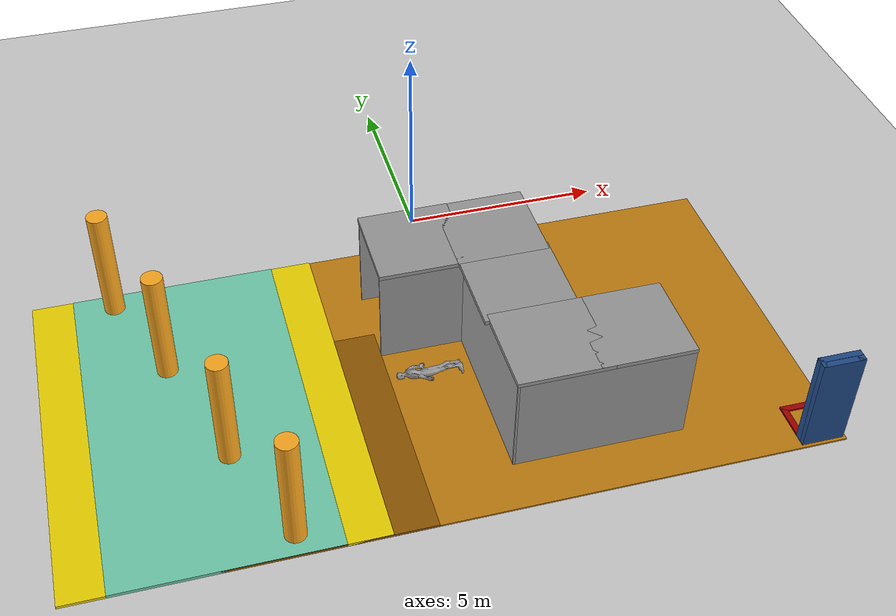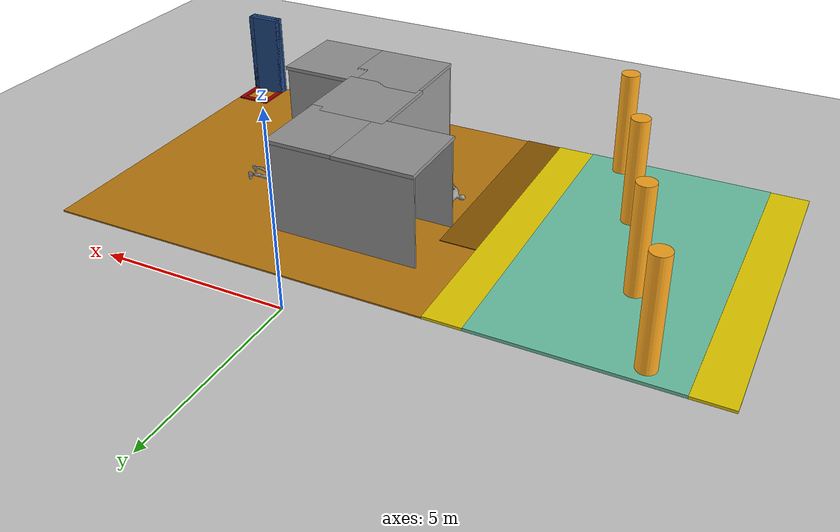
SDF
<sdf version="1.6">
 <world name="default">
  <light name="sun" type="directional">
   <pose>0 0 10 0 -0 0</pose>
   <diffuse>0.8 0.8 0.8 1</diffuse>
   <specular>0.2 0.2 0.2 1</specular>
   <attenuation>
    <range>1000</range>
    <constant>0.9</constant>
    <linear>0.01</linear>
    <quadratic>0.001</quadratic>
   </attenuation>
   <direction>-0.5 0.1 -0.9</direction>
  </light>
  <model name="ground_plane">
   <static>1</static>
   <link name="link">
    <collision name="collision">
     <geometry><plane><normal>0 0 1</normal><size>100 100</size></plane></geometry>
     <surface>
      <contact><collide_bitmask>65535</collide_bitmask></contact>
      <friction><ode><mu>100</mu><mu2>50</mu2></ode></friction>
     </surface>
    </collision>
    <visual name="visual">
     <cast_shadows>0</cast_shadows>
     <geometry><plane><normal>0 0 1</normal><size>100 100</size></plane></geometry>
     <material>
      <script><uri>file://media/materials/scripts/gazebo.material</uri><name>Gazebo/Grey</name></script>
     </material>
    </visual>
   </link>
  </model>
  <gravity>0 0 -9.8</gravity>
  <magnetic_field>6e-06 2.3e-05 -4.2e-05</magnetic_field>
  <atmosphere type="adiabatic"/>
  <physics name="default_physics" default="0" type="ode">
   <max_step_size>0.001</max_step_size>
   <real_time_factor>1</real_time_factor>
   <real_time_update_rate>1000</real_time_update_rate>
  </physics>
  <scene><ambient>0.4 0.4 0.4 1</ambient><background>0.7 0.7 0.7 1</background><shadows>1</shadows></scene>
  <audio><device>default</device></audio>
  <spherical_coordinates>
   <surface_model>EARTH_WGS84</surface_model>
   <latitude_deg>0</latitude_deg>
   <longitude_deg>0</longitude_deg>
   <elevation>0</elevation>
   <heading_deg>0</heading_deg>
  </spherical_coordinates>
  <model name="base_m4">
   <pose>-1.24763 -5.54199 0 0 -0 0</pose>
   <link name="Wall_11">
    <collision name="Wall_11_Collision">
     <geometry><box><size>6 6 0.06</size></box></geometry>
     <pose>0 0 0.03 0 -0 0</pose>
    </collision>
    <visual name="Wall_11_Visual">
     <pose>0 0 0.03 0 -0 0</pose>
     <geometry><box><size>6 6 0.06</size></box></geometry>
     <material>
      <script><uri>file://media/materials/scripts/gazebo.material</uri><name>Gazebo/Grey</name></script>
      <ambient>0.560784 0.34902 0.00784314 1</ambient>
     </material>
     <meta><layer>0</layer></meta>
    </visual>
    <pose>-3.75 -1.5 0 0 -0 0</pose>
   </link>
   <link name="Wall_3">
    <collision name="Wall_3_Collision">
     <geometry><box><size>9 1 0.07</size></box></geometry>
     <pose>0 0 0.035 0 -0 0</pose>
    </collision>
    <visual name="Wall_3_Visual">
     <pose>0 0 0.035 0 -0 0</pose>
     <geometry><box><size>9 1 0.07</size></box></geometry>
     <material>
      <script><uri>file://media/materials/scripts/gazebo.material</uri><name>Gazebo/Grey</name></script>
      <ambient>0.929412 0.831373 0 1</ambient>
     </material>
     <meta><layer>0</layer></meta>
    </visual>
    <pose>-8.25 0 0 0 -0 1.5708</pose>
   </link>
   <link name="Wall_5">
    <collision name="Wall_5_Collision">
     <geometry><box><size>9 5 0.08</size></box></geometry>
     <pose>0 0 0.04 0 -0 0</pose>
    </collision>
    <visual name="Wall_5_Visual">
     <pose>0 0 0.04 0 -0 0</pose>
     <geometry><box><size>9 5 0.08</size></box></geometry>
     <material>
      <script><uri>file://media/materials/scripts/gazebo.material</uri><name>Gazebo/Grey</name></script>
      <ambient>0.435294 0.796078 0.67451 1</ambient>
     </material>
     <meta><layer>0</layer></meta>
    </visual>
    <pose>-5.25 0 0 0 -0 1.5708</pose>
   </link>
   <link name="Wall_7">
    <collision name="Wall_7_Collision">
     <geometry><box><size>9 1 0.07</size></box></geometry>
     <pose>0 0 0.035 0 -0 0</pose>
    </collision>
    <visual name="Wall_7_Visual">
     <pose>0 0 0.035 0 -0 0</pose>
     <geometry><box><size>9 1 0.07</size></box></geometry>
     <material>
      <script><uri>file://media/materials/scripts/gazebo.material</uri><name>Gazebo/Grey</name></script>
      <ambient>0.929412 0.831373 0 1</ambient>
     </material>
     <meta><layer>0</layer></meta>
    </visual>
    <pose>-2.25 0 0 0 -0 1.5708</pose>
   </link>
   <link name="Wall_9">
    <collision name="Wall_9_Collision">
     <geometry><box><size>10.5 9 0.04</size></box></geometry>
     <pose>0 0 0.02 0 -0 0</pose>
    </collision>
    <visual name="Wall_9_Visual">
     <pose>0 0 0.02 0 -0 0</pose>
     <geometry><box><size>10.5 9 0.04</size></box></geometry>
     <material>
      <script><uri>file://media/materials/scripts/gazebo.material</uri><name>Gazebo/Grey</name></script>
      <ambient>0.756863 0.490196 0.0666667 1</ambient>
     </material>
     <meta><layer>0</layer></meta>
    </visual>
    <pose>3.5 0 0 0 -0 0</pose>
   </link>
   <static>1</static>
  </model>
  <model name="fanAndHeliport">
   <pose>6.94427 -9.39548 -0 0 -0 3.13599</pose>
   <link name="Wall_12">
    <collision name="Wall_12_Collision">
     <geometry><box><size>1 0.15 0.085</size></box></geometry>
     <pose>0 0 0.0425 0 -0 0</pose>
    </collision>
    <visual name="Wall_12_Visual">
     <pose>0 0 0.0425 0 -0 0</pose>
     <geometry><box><size>1 0.15 0.085</size></box></geometry>
     <material>
      <script><uri>file://media/materials/scripts/gazebo.material</uri><name>Gazebo/Grey</name></script>
      <ambient>0.643137 0 0 1</ambient>
     </material>
     <meta><layer>0</layer></meta>
    </visual>
    <pose>-0.425 -0.07725 0 0 -0 -1.5708</pose>
   </link>
   <link name="Wall_13">
    <collision name="Wall_13_Collision">
     <geometry><box><size>1 0.15 0.085</size></box></geometry>
     <pose>0 0 0.0425 0 -0 0</pose>
    </collision>
    <visual name="Wall_13_Visual">
     <pose>0 0 0.0425 0 -0 0</pose>
     <geometry><box><size>1 0.15 0.085</size></box></geometry>
     <material>
      <script><uri>file://media/materials/scripts/gazebo.material</uri><name>Gazebo/Grey</name></script>
      <ambient>0.643137 0 0 1</ambient>
     </material>
     <meta><layer>0</layer></meta>
    </visual>
    <pose>-0 -0.50225 0 0 -0 0</pose>
   </link>
   <link name="Wall_14">
    <collision name="Wall_14_Collision">
     <geometry><box><size>1 0.15 0.085</size></box></geometry>
     <pose>0 0 0.0425 0 -0 0</pose>
    </collision>
    <visual name="Wall_14_Visual">
     <pose>0 0 0.0425 0 -0 0</pose>
     <geometry><box><size>1 0.15 0.085</size></box></geometry>
     <material>
      <script><uri>file://media/materials/scripts/gazebo.material</uri><name>Gazebo/Grey</name></script>
      <ambient>0.643137 0 0 1</ambient>
     </material>
     <meta><layer>0</layer></meta>
    </visual>
    <pose>0.425 -0.07725 0 0 -0 1.5708</pose>
   </link>
   <link name="Wall_2">
    <collision name="Wall_2_Collision">
     <geometry><box><size>1 0.15 2.5</size></box></geometry>
     <pose>0 0 1.25 0 -0 0</pose>
    </collision>
    <visual name="Wall_2_Visual">
     <pose>0 0 1.25 0 -0 0</pose>
     <geometry><box><size>1 0.15 2.5</size></box></geometry>
     <material>
      <script><uri>file://media/materials/scripts/gazebo.material</uri><name>Gazebo/Grey</name></script>
      <ambient>0.12549 0.290196 0.529412 1</ambient>
     </material>
     <meta><layer>0</layer></meta>
    </visual>
    <pose>-0 0.50225 0 0 -0 3.14159</pose>
   </link>
   <link name="Wall_3">
    <collision name="Wall_3_Collision">
     <geometry><box><size>0.293 0.15 2.5</size></box></geometry>
     <pose>0 0 1.25 0 -0 0</pose>
    </collision>
    <visual name="Wall_3_Visual">
     <pose>0 0 1.25 0 -0 0</pose>
     <geometry><box><size>0.293 0.15 2.5</size></box></geometry>
     <material>
      <script><uri>file://media/materials/scripts/gazebo.material</uri><name>Gazebo/Grey</name></script>
      <ambient>0.12549 0.290196 0.529412 1</ambient>
     </material>
     <meta><layer>0</layer></meta>
    </visual>
    <pose>-0.425 0.41925 0 0 -0 -1.5708</pose>
   </link>
   <link name="Wall_4">
    <collision name="Wall_4_Collision">
     <geometry><box><size>1 0.15 2.5</size></box></geometry>
     <pose>0 0 1.25 0 -0 0</pose>
    </collision>
    <visual name="Wall_4_Visual">
     <pose>0 0 1.25 0 -0 0</pose>
     <geometry><box><size>1 0.15 2.5</size></box></geometry>
     <material>
      <script><uri>file://media/materials/scripts/gazebo.material</uri><name>Gazebo/Grey</name></script>
      <ambient>0.12549 0.290196 0.529412 1</ambient>
     </material>
     <meta><layer>0</layer></meta>
    </visual>
    <pose>-0 0.34775 0 0 -0 0</pose>
   </link>
   <link name="Wall_5">
    <collision name="Wall_5_Collision">
     <geometry><box><size>0.293 0.15 2.5</size></box></geometry>
     <pose>0 0 1.25 0 -0 0</pose>
    </collision>
    <visual name="Wall_5_Visual">
     <pose>0 0 1.25 0 -0 0</pose>
     <geometry><box><size>0.293 0.15 2.5</size></box></geometry>
     <material>
      <script><uri>file://media/materials/scripts/gazebo.material</uri><name>Gazebo/Grey</name></script>
      <ambient>0.12549 0.290196 0.529412 1</ambient>
     </material>
     <meta><layer>0</layer></meta>
    </visual>
    <pose>0.425 0.41925 0 0 -0 1.5708</pose>
   </link>
   <static>1</static>
  </model>
  <model name="m2_1">
   <pose>1.02363 -5.7654 0 0 -0 0</pose>
   <link name="Wall_100">
    <collision name="Wall_100_Collision">
     <geometry><box><size>4.1 0.05 2.5</size></box></geometry>
     <pose>0 0 1.25 0 -0 0</pose>
    </collision>
    <visual name="Wall_100_Visual">
     <pose>0 0 1.25 0 -0 0</pose>
     <geometry><box><size>4.1 0.05 2.5</size></box></geometry>
     <material>
      <script><uri>file://media/materials/scripts/gazebo.material</uri><name>Gazebo/Grey</name></script>
      <ambient>1 1 1 1</ambient>
     </material>
     <meta><layer>0</layer></meta>
    </visual>
    <pose>-1 -1.025 0 0 -0 1.5708</pose>
   </link>
   <link name="Wall_102">
    <collision name="Wall_102_Collision">
     <geometry><box><size>2.05 0.05 2.5</size></box></geometry>
     <pose>0 0 1.25 0 -0 0</pose>
    </collision>
    <visual name="Wall_102_Visual">
     <pose>0 0 1.25 0 -0 0</pose>
     <geometry><box><size>2.05 0.05 2.5</size></box></geometry>
     <material>
      <script><uri>file://media/materials/scripts/gazebo.material</uri><name>Gazebo/Grey</name></script>
      <ambient>1 1 1 1</ambient>
     </material>
     <meta><layer>0</layer></meta>
    </visual>
    <pose>-2 1 0 0 -0 3.14159</pose>
   </link>
   <link name="Wall_81">
    <collision name="Wall_81_Collision">
     <geometry><box><size>4.05 0.05 2.5</size></box></geometry>
     <pose>0 0 1.25 0 -0 0</pose>
    </collision>
    <visual name="Wall_81_Visual">
     <pose>0 0 1.25 0 -0 0</pose>
     <geometry><box><size>4.05 0.05 2.5</size></box></geometry>
     <material>
      <script><uri>file://media/materials/scripts/gazebo.material</uri><name>Gazebo/Grey</name></script>
      <ambient>1 1 1 1</ambient>
     </material>
     <meta><layer>0</layer></meta>
    </visual>
    <pose>-1 3.05 0 0 -0 0</pose>
   </link>
   <link name="Wall_83">
    <collision name="Wall_83_Collision">
     <geometry><box><size>4.1 0.05 2.5</size></box></geometry>
     <pose>0 0 1.25 0 -0 0</pose>
    </collision>
    <visual name="Wall_83_Visual">
     <pose>0 0 1.25 0 -0 0</pose>
     <geometry><box><size>4.1 0.05 2.5</size></box></geometry>
     <material>
      <script><uri>file://media/materials/scripts/gazebo.material</uri><name>Gazebo/Grey</name></script>
      <ambient>1 1 1 1</ambient>
     </material>
     <meta><layer>0</layer></meta>
    </visual>
    <pose>1 1.01005 0 0 -0 -1.5708</pose>
   </link>
   <link name="Wall_94">
    <collision name="Wall_94_Collision">
     <geometry><box><size>2.05 0.05 2.5</size></box></geometry>
     <pose>0 0 1.25 0 -0 0</pose>
    </collision>
    <visual name="Wall_94_Visual">
     <pose>0 0 1.25 0 -0 0</pose>
     <geometry><box><size>2.05 0.05 2.5</size></box></geometry>
     <material>
      <script><uri>file://media/materials/scripts/gazebo.material</uri><name>Gazebo/Grey</name></script>
      <ambient>1 1 1 1</ambient>
     </material>
     <meta><layer>0</layer></meta>
    </visual>
    <pose>2 -1 0 0 -0 0</pose>
   </link>
   <link name="Wall_98">
    <collision name="Wall_98_Collision">
     <geometry><box><size>4.05 0.05 2.5</size></box></geometry>
     <pose>0 0 1.25 0 -0 0</pose>
    </collision>
    <visual name="Wall_98_Visual">
     <pose>0 0 1.25 0 -0 0</pose>
     <geometry><box><size>4.05 0.05 2.5</size></box></geometry>
     <material>
      <script><uri>file://media/materials/scripts/gazebo.material</uri><name>Gazebo/Grey</name></script>
      <ambient>1 1 1 1</ambient>
     </material>
     <meta><layer>0</layer></meta>
    </visual>
    <pose>1 -3.05 0 0 -0 3.14159</pose>
   </link>
   <static>1</static>
  </model>
  <model name="2.2ceiling">
   <pose>-0.909194 -3.74968 2.5 0 -0 0</pose>
   <link name="Wall_175">
    <collision name="Wall_175_Collision">
     <geometry><box><size>2.21 2.2 0.1</size></box></geometry>
     <pose>0 0 0.05 0 -0 0</pose>
    </collision>
    <visual name="Wall_175_Visual">
     <pose>0 0 0.05 0 -0 0</pose>
     <geometry><box><size>2.21 2.2 0.1</size></box></geometry>
     <material>
      <script><uri>file://media/materials/scripts/gazebo.material</uri><name>Gazebo/Grey</name></script>
      <ambient>1 1 1 1</ambient>
     </material>
     <meta><layer>0</layer></meta>
    </visual>
    <pose>-0 0 0 0 -0 -1.5708</pose>
   </link>
   <static>1</static>
  </model>
  <model name="2.2ceiling_clone">
   <pose>0.952653 -3.76475 2.5 0 -0 0</pose>
   <link name="Wall_175">
    <collision name="Wall_175_Collision">
     <geometry><box><size>2.21 2.2 0.1</size></box></geometry>
     <pose>0 0 0.05 0 -0 0</pose>
    </collision>
    <visual name="Wall_175_Visual">
     <pose>0 0 0.05 0 -0 0</pose>
     <geometry><box><size>2.21 2.2 0.1</size></box></geometry>
     <material>
      <script><uri>file://media/materials/scripts/gazebo.material</uri><name>Gazebo/Grey</name></script>
      <ambient>1 1 1 1</ambient>
     </material>
     <meta><layer>0</layer></meta>
    </visual>
    <pose>-0 0 0 0 -0 -1.5708</pose>
   </link>
   <static>1</static>
  </model>
  <model name="2.2ceiling_clone_0">
   <pose>0.977835 -5.75794 2.5 0 -0 0</pose>
   <link name="Wall_175">
    <collision name="Wall_175_Collision">
     <geometry><box><size>2.21 2.2 0.1</size></box></geometry>
     <pose>0 0 0.05 0 -0 0</pose>
    </collision>
    <visual name="Wall_175_Visual">
     <pose>0 0 0.05 0 -0 0</pose>
     <geometry><box><size>2.21 2.2 0.1</size></box></geometry>
     <material>
      <script><uri>file://media/materials/scripts/gazebo.material</uri><name>Gazebo/Grey</name></script>
      <ambient>1 1 1 1</ambient>
     </material>
     <meta><layer>0</layer></meta>
    </visual>
    <pose>-0 0 0 0 -0 -1.5708</pose>
   </link>
   <static>1</static>
  </model>
  <model name="2.2ceiling_clone_1">
   <pose>1.08439 -7.75515 2.5 0 -0 0</pose>
   <link name="Wall_175">
    <collision name="Wall_175_Collision">
     <geometry><box><size>2.21 2.2 0.1</size></box></geometry>
     <pose>0 0 0.05 0 -0 0</pose>
    </collision>
    <visual name="Wall_175_Visual">
     <pose>0 0 0.05 0 -0 0</pose>
     <geometry><box><size>2.21 2.2 0.1</size></box></geometry>
     <material>
      <script><uri>file://media/materials/scripts/gazebo.material</uri><name>Gazebo/Grey</name></script>
      <ambient>1 1 1 1</ambient>
     </material>
     <meta><layer>0</layer></meta>
    </visual>
    <pose>-0 0 0 0 -0 -1.5708</pose>
   </link>
   <static>1</static>
  </model>
  <model name="2.2ceiling_clone_2">
   <pose>2.95673 -7.75429 2.5 0 -0 0</pose>
   <link name="Wall_175">
    <collision name="Wall_175_Collision">
     <geometry><box><size>2.21 2.2 0.1</size></box></geometry>
     <pose>0 0 0.05 0 -0 0</pose>
    </collision>
    <visual name="Wall_175_Visual">
     <pose>0 0 0.05 0 -0 0</pose>
     <geometry><box><size>2.21 2.2 0.1</size></box></geometry>
     <material>
      <script><uri>file://media/materials/scripts/gazebo.material</uri><name>Gazebo/Grey</name></script>
      <ambient>1 1 1 1</ambient>
     </material>
     <meta><layer>0</layer></meta>
    </visual>
    <pose>-0 0 0 0 -0 -1.5708</pose>
   </link>
   <static>1</static>
  </model>
  <model name="bonequinho_50kg">
   <link name="link_0">
    <inertial>
     <mass>0</mass>
     <inertia><ixx>0</ixx><ixy>0</ixy><ixz>0</ixz><iyy>0</iyy><iyz>0</iyz><izz>0</izz></inertia>
    </inertial>
    <pose>-0 2e-06 0 0 -0 0</pose>
    <visual name="visual">
     <geometry>
      <mesh><uri>/home/felipe/src/simulation/archives .dae/Cenários/bonequinho.dae</uri><scale>1 1 1</scale></mesh>
     </geometry>
     <material>
      <lighting>1</lighting>
      <script><uri>file://media/materials/scripts/gazebo.material</uri><name>Gazebo/Grey</name></script>
      <shader type="vertex"><normal_map>__default__</normal_map></shader>
      <ambient>0.3 0.3 0.3 1</ambient>
      <diffuse>0.7 0.7 0.7 1</diffuse>
      <specular>0.01 0.01 0.01 1</specular>
      <emissive>0 0 0 1</emissive>
     </material>
    </visual>
    <collision name="collision">
     <geometry>
      <mesh><uri>/home/felipe/src/simulation/archives .dae/Cenários/bonequinho.dae</uri><scale>1 1 1</scale></mesh>
     </geometry>
     <surface>
      <friction>
       <ode><mu>1</mu><mu2>1</mu2><fdir1>0 0 0</fdir1><slip1>0</slip1><slip2>0</slip2></ode>
       <torsional>
        <coefficient>1</coefficient>
        <patch_radius>0</patch_radius>
        <surface_radius>0</surface_radius>
        <use_patch_radius>1</use_patch_radius>
        <ode><slip>0</slip></ode>
       </torsional>
      </friction>
      <bounce><restitution_coefficient>0</restitution_coefficient><threshold>1e+06</threshold></bounce>
      <contact>
       <collide_without_contact>0</collide_without_contact>
       <collide_without_contact_bitmask>1</collide_without_contact_bitmask>
       <collide_bitmask>1</collide_bitmask>
       <ode>
        <soft_cfm>0</soft_cfm>
        <soft_erp>0.2</soft_erp>
        <kp>1e+13</kp>
        <kd>1</kd>
        <max_vel>0.01</max_vel>
        <min_depth>0</min_depth>
       </ode>
       <bullet>
        <split_impulse>1</split_impulse>
        <split_impulse_penetration_threshold>-0.01</split_impulse_penetration_threshold>
        <soft_cfm>0</soft_cfm>
        <soft_erp>0.2</soft_erp>
        <kp>1e+13</kp>
        <kd>1</kd>
       </bullet>
      </contact>
     </surface>
    </collision>
   </link>
   <static>0</static>
   <pose>-0.28558 -7.12347 -7.96952 1.56363 -0.428138 -1.56906</pose>
  </model>
  <model name="bonequinho_50kg_clone">
   <link name="link_0">
    <inertial>
     <mass>0</mass>
     <inertia><ixx>0</ixx><ixy>0</ixy><ixz>0</ixz><iyy>0</iyy><iyz>0</iyz><izz>0</izz></inertia>
    </inertial>
    <pose>-0 2e-06 0 0 -0 0</pose>
    <visual name="visual">
     <geometry>
      <mesh><uri>/home/felipe/src/simulation/archives .dae/Cenários/bonequinho.dae</uri><scale>1 1 1</scale></mesh>
     </geometry>
     <material>
      <lighting>1</lighting>
      <script><uri>file://media/materials/scripts/gazebo.material</uri><name>Gazebo/Grey</name></script>
      <shader type="vertex"><normal_map>__default__</normal_map></shader>
      <ambient>0.3 0.3 0.3 1</ambient>
      <diffuse>0.7 0.7 0.7 1</diffuse>
      <specular>0.01 0.01 0.01 1</specular>
      <emissive>0 0 0 1</emissive>
     </material>
    </visual>
    <collision name="collision">
     <geometry>
      <mesh><uri>/home/felipe/src/simulation/archives .dae/Cenários/bonequinho.dae</uri><scale>1 1 1</scale></mesh>
     </geometry>
     <surface>
      <friction>
       <ode><mu>1</mu><mu2>1</mu2><fdir1>0 0 0</fdir1><slip1>0</slip1><slip2>0</slip2></ode>
       <torsional>
        <coefficient>1</coefficient>
        <patch_radius>0</patch_radius>
        <surface_radius>0</surface_radius>
        <use_patch_radius>1</use_patch_radius>
        <ode><slip>0</slip></ode>
       </torsional>
      </friction>
      <bounce><restitution_coefficient>0</restitution_coefficient><threshold>1e+06</threshold></bounce>
      <contact>
       <collide_without_contact>0</collide_without_contact>
       <collide_without_contact_bitmask>1</collide_without_contact_bitmask>
       <collide_bitmask>1</collide_bitmask>
       <ode>
        <soft_cfm>0</soft_cfm>
        <soft_erp>0.2</soft_erp>
        <kp>1e+13</kp>
        <kd>1</kd>
        <max_vel>0.01</max_vel>
        <min_depth>0</min_depth>
       </ode>
       <bullet>
        <split_impulse>1</split_impulse>
        <split_impulse_penetration_threshold>-0.01</split_impulse_penetration_threshold>
        <soft_cfm>0</soft_cfm>
        <soft_erp>0.2</soft_erp>
        <kp>1e+13</kp>
        <kd>1</kd>
       </bullet>
      </contact>
     </surface>
    </collision>
   </link>
   <static>0</static>
   <pose>1.51423 -4.66829 -7.96952 1.56363 -0.428138 -1.56906</pose>
  </model>
  <model name="bonequinho_50kg_clone_0">
   <link name="link_0">
    <inertial>
     <mass>0</mass>
     <inertia><ixx>0</ixx><ixy>0</ixy><ixz>0</ixz><iyy>0</iyy><iyz>0</iyz><izz>0</izz></inertia>
    </inertial>
    <pose>-0 2e-06 0 0 -0 0</pose>
    <visual name="visual">
     <geometry>
      <mesh><uri>/home/felipe/src/simulation/archives .dae/Cenários/bonequinho.dae</uri><scale>1 1 1</scale></mesh>
     </geometry>
     <material>
      <lighting>1</lighting>
      <script><uri>file://media/materials/scripts/gazebo.material</uri><name>Gazebo/Grey</name></script>
      <shader type="vertex"><normal_map>__default__</normal_map></shader>
      <ambient>0.3 0.3 0.3 1</ambient>
      <diffuse>0.7 0.7 0.7 1</diffuse>
      <specular>0.01 0.01 0.01 1</specular>
      <emissive>0 0 0 1</emissive>
     </material>
    </visual>
    <collision name="collision">
     <geometry>
      <mesh><uri>/home/felipe/src/simulation/archives .dae/Cenários/bonequinho.dae</uri><scale>1 1 1</scale></mesh>
     </geometry>
     <surface>
      <friction>
       <ode><mu>1</mu><mu2>1</mu2><fdir1>0 0 0</fdir1><slip1>0</slip1><slip2>0</slip2></ode>
       <torsional>
        <coefficient>1</coefficient>
        <patch_radius>0</patch_radius>
        <surface_radius>0</surface_radius>
        <use_patch_radius>1</use_patch_radius>
        <ode><slip>0</slip></ode>
       </torsional>
      </friction>
      <bounce><restitution_coefficient>0</restitution_coefficient><threshold>1e+06</threshold></bounce>
      <contact>
       <collide_without_contact>0</collide_without_contact>
       <collide_without_contact_bitmask>1</collide_without_contact_bitmask>
       <collide_bitmask>1</collide_bitmask>
       <ode>
        <soft_cfm>0</soft_cfm>
        <soft_erp>0.2</soft_erp>
        <kp>1e+13</kp>
        <kd>1</kd>
        <max_vel>0.01</max_vel>
        <min_depth>0</min_depth>
       </ode>
       <bullet>
        <split_impulse>1</split_impulse>
        <split_impulse_penetration_threshold>-0.01</split_impulse_penetration_threshold>
        <soft_cfm>0</soft_cfm>
        <soft_erp>0.2</soft_erp>
        <kp>1e+13</kp>
        <kd>1</kd>
       </bullet>
      </contact>
     </surface>
    </collision>
   </link>
   <static>0</static>
   <pose>2.1289 -8.56892 -7.96952 1.56363 -0.428138 -1.56906</pose>
  </model>
  <model name="bonequinho_50kg_clone_1">
   <link name="link_0">
    <inertial>
     <mass>0</mass>
     <inertia><ixx>0</ixx><ixy>0</ixy><ixz>0</ixz><iyy>0</iyy><iyz>0</iyz><izz>0</izz></inertia>
    </inertial>
    <pose>-0 2e-06 0 0 -0 0</pose>
    <visual name="visual">
     <geometry>
      <mesh><uri>/home/felipe/src/simulation/archives .dae/Cenários/bonequinho.dae</uri><scale>1 1 1</scale></mesh>
     </geometry>
     <material>
      <lighting>1</lighting>
      <script><uri>file://media/materials/scripts/gazebo.material</uri><name>Gazebo/Grey</name></script>
      <shader type="vertex"><normal_map>__default__</normal_map></shader>
      <ambient>0.3 0.3 0.3 1</ambient>
      <diffuse>0.7 0.7 0.7 1</diffuse>
      <specular>0.01 0.01 0.01 1</specular>
      <emissive>0 0 0 1</emissive>
     </material>
    </visual>
    <collision name="collision">
     <geometry>
      <mesh><uri>/home/felipe/src/simulation/archives .dae/Cenários/bonequinho.dae</uri><scale>1 1 1</scale></mesh>
     </geometry>
     <surface>
      <friction>
       <ode><mu>1</mu><mu2>1</mu2><fdir1>0 0 0</fdir1><slip1>0</slip1><slip2>0</slip2></ode>
       <torsional>
        <coefficient>1</coefficient>
        <patch_radius>0</patch_radius>
        <surface_radius>0</surface_radius>
        <use_patch_radius>1</use_patch_radius>
        <ode><slip>0</slip></ode>
       </torsional>
      </friction>
      <bounce><restitution_coefficient>0</restitution_coefficient><threshold>1e+06</threshold></bounce>
      <contact>
       <collide_without_contact>0</collide_without_contact>
       <collide_without_contact_bitmask>1</collide_without_contact_bitmask>
       <collide_bitmask>1</collide_bitmask>
       <ode>
        <soft_cfm>0</soft_cfm>
        <soft_erp>0.2</soft_erp>
        <kp>1e+13</kp>
        <kd>1</kd>
        <max_vel>0.01</max_vel>
        <min_depth>0</min_depth>
       </ode>
       <bullet>
        <split_impulse>1</split_impulse>
        <split_impulse_penetration_threshold>-0.01</split_impulse_penetration_threshold>
        <soft_cfm>0</soft_cfm>
        <soft_erp>0.2</soft_erp>
        <kp>1e+13</kp>
        <kd>1</kd>
       </bullet>
      </contact>
     </surface>
    </collision>
   </link>
   <static>0</static>
   <pose>4.04825 -5.91784 -7.96952 1.56363 -0.428138 -1.56906</pose>
  </model>
  <model name="orange_pole">
   <pose>-8 -1.5 1.5 0 -0 0</pose>
   <link name="pole">
    <inertial>
     <mass>1</mass>
     <inertia><ixx>0.145833</ixx><iyy>0.145833</iyy><izz>0.125</izz><ixy>0</ixy><ixz>0</ixz><iyz>0</iyz></inertia>
    </inertial>
    <gravity>0</gravity>
    <visual name="pole_visual">
     <geometry><cylinder><radius>0.25</radius><length>3</length></cylinder></geometry>
     <material>
      <lighting>1</lighting>
      <script><uri>file://media/materials/scripts/gazebo.material</uri><name>Gazebo/Grey</name></script>
      <shader type="vertex"><normal_map>__default__</normal_map></shader>
      <ambient>0.88 0.59 0.11 1</ambient>
      <diffuse>0.99 0.66 0.12 1</diffuse>
      <specular>0.01 0.01 0.01 1</specular>
      <emissive>0 0 0 1</emissive>
     </material>
    </visual>
    <collision name="collision">
     <geometry><cylinder><radius>0.25</radius><length>3</length></cylinder></geometry>
    </collision>
   </link>
   <static>0</static>
  </model>
  <model name="orange_pole_0">
   <pose>-5 -9.5 1.5 0 -0 0</pose>
   <link name="pole">
    <inertial>
     <mass>1</mass>
     <inertia><ixx>0.145833</ixx><iyy>0.145833</iyy><izz>0.125</izz><ixy>0</ixy><ixz>0</ixz><iyz>0</iyz></inertia>
    </inertial>
    <gravity>0</gravity>
    <visual name="pole_visual">
     <geometry><cylinder><radius>0.25</radius><length>3</length></cylinder></geometry>
     <material>
      <lighting>1</lighting>
      <script><uri>file://media/materials/scripts/gazebo.material</uri><name>Gazebo/Grey</name></script>
      <shader type="vertex"><normal_map>__default__</normal_map></shader>
      <ambient>0.88 0.59 0.11 1</ambient>
      <diffuse>0.99 0.66 0.12 1</diffuse>
      <specular>0.01 0.01 0.01 1</specular>
      <emissive>0 0 0 1</emissive>
     </material>
    </visual>
    <collision name="collision">
     <geometry><cylinder><radius>0.25</radius><length>3</length></cylinder></geometry>
    </collision>
   </link>
   <static>0</static>
  </model>
  <model name="orange_pole_1">
   <pose>-7 -4 1.5 0 -0 0</pose>
   <link name="pole">
    <inertial>
     <mass>1</mass>
     <inertia><ixx>0.145833</ixx><iyy>0.145833</iyy><izz>0.125</izz><ixy>0</ixy><ixz>0</ixz><iyz>0</iyz></inertia>
    </inertial>
    <gravity>0</gravity>
    <visual name="pole_visual">
     <geometry><cylinder><radius>0.25</radius><length>3</length></cylinder></geometry>
     <material>
      <lighting>1</lighting>
      <script><uri>file://media/materials/scripts/gazebo.material</uri><name>Gazebo/Grey</name></script>
      <shader type="vertex"><normal_map>__default__</normal_map></shader>
      <ambient>0.88 0.59 0.11 1</ambient>
      <diffuse>0.99 0.66 0.12 1</diffuse>
      <specular>0.01 0.01 0.01 1</specular>
      <emissive>0 0 0 1</emissive>
     </material>
    </visual>
    <collision name="collision">
     <geometry><cylinder><radius>0.25</radius><length>3</length></cylinder></geometry>
    </collision>
   </link>
   <static>0</static>
  </model>
  <model name="orange_pole_2">
   <pose>-6 -7 1.5 0 -0 0</pose>
   <link name="pole">
    <inertial>
     <mass>1</mass>
     <inertia><ixx>0.145833</ixx><iyy>0.145833</iyy><izz>0.125</izz><ixy>0</ixy><ixz>0</ixz><iyz>0</iyz></inertia>
    </inertial>
    <gravity>0</gravity>
    <visual name="pole_visual">
     <geometry><cylinder><radius>0.25</radius><length>3</length></cylinder></geometry>
     <material>
      <lighting>1</lighting>
      <script><uri>file://media/materials/scripts/gazebo.material</uri><name>Gazebo/Grey</name></script>
      <shader type="vertex"><normal_map>__default__</normal_map></shader>
      <ambient>0.88 0.59 0.11 1</ambient>
      <diffuse>0.99 0.66 0.12 1</diffuse>
      <specular>0.01 0.01 0.01 1</specular>
      <emissive>0 0 0 1</emissive>
     </material>
    </visual>
    <collision name="collision">
     <geometry><cylinder><radius>0.25</radius><length>3</length></cylinder></geometry>
    </collision>
   </link>
   <static>0</static>
  </model>
 </world>
</sdf>
